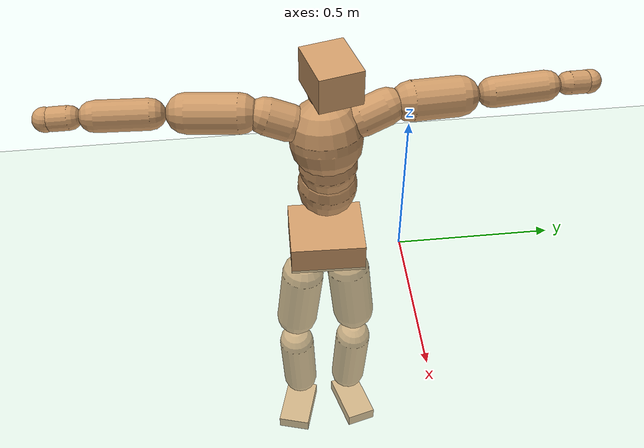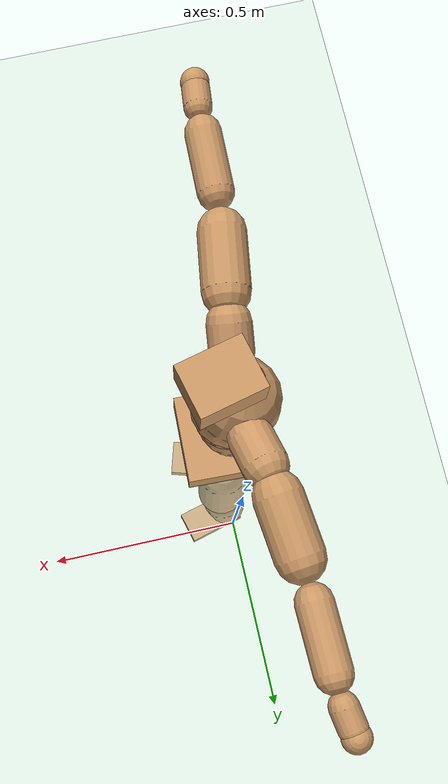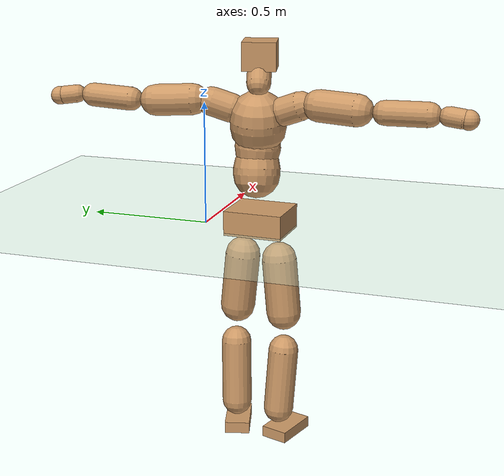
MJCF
<mujoco model="humanoid">
  <compiler coordinate="local" angle="radian"/>
  <default>
    <joint damping="0.0" armature="0.01" stiffness="0.0" limited="true"/>
    <geom conaffinity="1" condim="3" contype="7" margin="0.001" rgba="0.8 0.6 .4 1"/>
  </default>
  <asset>
    <texture type="skybox" builtin="gradient" rgb1=".4 .5 .6" rgb2="0 0 0" width="100" height="100"/>
    <texture builtin="flat" height="1278" mark="cross" markrgb="1 1 1" name="texgeom" random="0.01" rgb1="0.8 0.6 0.4" rgb2="0.8 0.6 0.4" type="cube" width="127"/>
    <texture builtin="checker" height="100" name="texplane" rgb1="0 0 0" rgb2="0.8 0.8 0.8" type="2d" width="100"/>
    <material name="MatPlane" reflectance="0.5" shininess="1" specular="1" texrepeat="60 60" texture="texplane"/>
    <material name="geom" texture="texgeom" texuniform="true"/>
  </asset>
  <worldbody>
    <light cutoff="100" diffuse="1 1 1" dir="-0 0 -1.3" directional="true" exponent="1" pos="0 0 1.3" specular=".1 .1 .1"/>
    <geom conaffinity="1" condim="3" name="floor" pos="0 0 0" rgba="0.8 0.9 0.8 1" size="100 100 .2" type="plane" material="MatPlane"/>
    <body name="Pelvis" pos="-0.0015 -0.2428 0.0464">
      <freejoint name="Pelvis"/>
      <geom type="box" contype="1" conaffinity="1" density="500" pos="-0.0117 0.0004 -0.0080" size="0.1064 0.12 0.0502" quat="0.9999 0.0000 0.0000 -0.0162" name="Pelvis"/>
      <body name="L_Hip" pos="-0.0119 0.0686 -0.0858">
        <joint name="L_Hip_x" type="hinge" pos="0 0 0" axis="1 0 0" stiffness="800" damping="80" armature="0.02" range="-180.0000 180.0000"/>
        <joint name="L_Hip_y" type="hinge" pos="0 0 0" axis="0 1 0" stiffness="800" damping="80" armature="0.02" range="-180.0000 180.0000"/>
        <joint name="L_Hip_z" type="hinge" pos="0 0 0" axis="0 0 1" stiffness="800" damping="80" armature="0.02" range="-180.0000 180.0000"/>
        <geom type="capsule" contype="1" conaffinity="1" density="500" fromto="0.0001 0.0076 -0.0755 0.0002 0.0302 -0.3018" size="0.071" name="L_Hip"/>
        <body name="L_Knee" pos="0.0003 0.0378 -0.3773">
          <joint name="L_Knee_x" type="hinge" pos="0 0 0" axis="1 0 0" stiffness="800" damping="80" armature="0.02" range="-180.0000 180.0000"/>
          <joint name="L_Knee_y" type="hinge" pos="0 0 0" axis="0 1 0" stiffness="800" damping="80" armature="0.02" range="-180.0000 180.0000"/>
          <joint name="L_Knee_z" type="hinge" pos="0 0 0" axis="0 0 1" stiffness="800" damping="80" armature="0.02" range="-180.0000 180.0000"/>
          <geom type="capsule" contype="1" conaffinity="1" density="500" fromto="-0.0088 -0.0036 -0.0869 -0.0351 -0.0144 -0.3478" size="0.062" name="L_Knee"/>
          <body name="L_Ankle" pos="-0.0438 -0.018 -0.4347">
            <joint name="L_Ankle_x" type="hinge" pos="0 0 0" axis="1 0 0" stiffness="800" damping="80" armature="0.02" range="-180.0000 180.0000"/>
            <joint name="L_Ankle_y" type="hinge" pos="0 0 0" axis="0 1 0" stiffness="800" damping="80" armature="0.02" range="-180.0000 180.0000"/>
            <joint name="L_Ankle_z" type="hinge" pos="0 0 0" axis="0 0 1" stiffness="800" damping="80" armature="0.02" range="-180.0000 180.0000"/>
            <geom type="box" contype="1" conaffinity="1" density="500" pos="0.0628 0.0168 -0.0301" size="0.094 0.0519 0.0242" quat="0.9914 0.0000 0.0000 0.1306" name="L_Ankle"/>
            <body name="L_Toe" pos="0.1255 0.0337 -0.0602">
              <joint name="L_Toe_x" type="hinge" pos="0 0 0" axis="1 0 0" stiffness="500" damping="50" armature="0.02" range="-180.0000 180.0000"/>
              <joint name="L_Toe_y" type="hinge" pos="0 0 0" axis="0 1 0" stiffness="500" damping="50" armature="0.02" range="-180.0000 180.0000"/>
              <joint name="L_Toe_z" type="hinge" pos="0 0 0" axis="0 0 1" stiffness="500" damping="50" armature="0.02" range="-180.0000 180.0000"/>
              <geom type="box" contype="1" conaffinity="1" density="500" pos="0.0000 0.0000 0.0292" size="0.0011 0.0026 0.0012" quat="0.9907 0.0000 0.0000 0.1359" name="L_Toe"/>
            </body>
          </body>
        </body>
      </body>
      <body name="R_Hip" pos="-0.0052 -0.0714 -0.0946">
        <joint name="R_Hip_x" type="hinge" pos="0 0 0" axis="1 0 0" stiffness="800" damping="80" armature="0.02" range="-180.0000 180.0000"/>
        <joint name="R_Hip_y" type="hinge" pos="0 0 0" axis="0 1 0" stiffness="800" damping="80" armature="0.02" range="-180.0000 180.0000"/>
        <joint name="R_Hip_z" type="hinge" pos="0 0 0" axis="0 0 1" stiffness="800" damping="80" armature="0.02" range="-180.0000 180.0000"/>
        <geom type="capsule" contype="1" conaffinity="1" density="500" fromto="-0.0026 -0.0078 -0.0760 -0.0103 -0.0311 -0.3041" size="0.0707" name="R_Hip"/>
        <body name="R_Knee" pos="-0.0129 -0.0389 -0.3802">
          <joint name="R_Knee_x" type="hinge" pos="0 0 0" axis="1 0 0" stiffness="800" damping="80" armature="0.02" range="-180.0000 180.0000"/>
          <joint name="R_Knee_y" type="hinge" pos="0 0 0" axis="0 1 0" stiffness="800" damping="80" armature="0.02" range="-180.0000 180.0000"/>
          <joint name="R_Knee_z" type="hinge" pos="0 0 0" axis="0 0 1" stiffness="800" damping="80" armature="0.02" range="-180.0000 180.0000"/>
          <geom type="capsule" contype="1" conaffinity="1" density="500" fromto="-0.0081 0.0040 -0.0856 -0.0326 0.0162 -0.3426" size="0.0616" name="R_Knee"/>
          <body name="R_Ankle" pos="-0.0407 0.0202 -0.4282">
            <joint name="R_Ankle_x" type="hinge" pos="0 0 0" axis="1 0 0" stiffness="800" damping="80" armature="0.02" range="-180.0000 180.0000"/>
            <joint name="R_Ankle_y" type="hinge" pos="0 0 0" axis="0 1 0" stiffness="800" damping="80" armature="0.02" range="-180.0000 180.0000"/>
            <joint name="R_Ankle_z" type="hinge" pos="0 0 0" axis="0 0 1" stiffness="800" damping="80" armature="0.02" range="-180.0000 180.0000"/>
            <geom type="box" contype="1" conaffinity="1" density="500" pos="0.0664 -0.0197 -0.0306" size="0.0923 0.0562 0.0232" quat="0.9896 0.0000 0.0000 -0.1440" name="R_Ankle"/>
            <body name="R_Toe" pos="0.1327 -0.0395 -0.0613">
              <joint name="R_Toe_x" type="hinge" pos="0 0 0" axis="1 0 0" stiffness="500" damping="50" armature="0.02" range="-180.0000 180.0000"/>
              <joint name="R_Toe_y" type="hinge" pos="0 0 0" axis="0 1 0" stiffness="500" damping="50" armature="0.02" range="-180.0000 180.0000"/>
              <joint name="R_Toe_z" type="hinge" pos="0 0 0" axis="0 0 1" stiffness="500" damping="50" armature="0.02" range="-180.0000 180.0000"/>
              <geom type="box" contype="1" conaffinity="1" density="500" pos="0.0000 0.0000 0.0315" size="0.0012 0.0027 0.0012" quat="0.9908 0.0000 0.0000 -0.1352" name="R_Toe"/>
            </body>
          </body>
        </body>
      </body>
      <body name="Torso" pos="-0.0529 0.0051 0.1324">
        <joint name="Torso_x" type="hinge" pos="0 0 0" axis="1 0 0" stiffness="1000" damping="100" armature="0.02" range="-180.0000 180.0000"/>
        <joint name="Torso_y" type="hinge" pos="0 0 0" axis="0 1 0" stiffness="1000" damping="100" armature="0.02" range="-180.0000 180.0000"/>
        <joint name="Torso_z" type="hinge" pos="0 0 0" axis="0 0 1" stiffness="1000" damping="100" armature="0.02" range="-180.0000 180.0000"/>
        <geom type="capsule" contype="1" conaffinity="1" density="500" fromto="0.0138 0.0023 0.0801 0.0092 0.0015 0.0534" size="0.0936" name="Torso"/>
        <body name="Spine" pos="0.023 0.0039 0.1336">
          <joint name="Spine_x" type="hinge" pos="0 0 0" axis="1 0 0" stiffness="1000" damping="100" armature="0.02" range="-180.0000 180.0000"/>
          <joint name="Spine_y" type="hinge" pos="0 0 0" axis="0 1 0" stiffness="1000" damping="100" armature="0.02" range="-180.0000 180.0000"/>
          <joint name="Spine_z" type="hinge" pos="0 0 0" axis="0 0 1" stiffness="1000" damping="100" armature="0.02" range="-180.0000 180.0000"/>
          <geom type="capsule" contype="1" conaffinity="1" density="500" fromto="0.0035 -0.0019 0.0326 0.0023 -0.0013 0.0218" size="0.0913" name="Spine"/>
          <body name="Chest" pos="0.0058 -0.0031 0.0544">
            <joint name="Chest_x" type="hinge" pos="0 0 0" axis="1 0 0" stiffness="1000" damping="100" armature="0.02" range="-180.0000 180.0000"/>
            <joint name="Chest_y" type="hinge" pos="0 0 0" axis="0 1 0" stiffness="1000" damping="100" armature="0.02" range="-180.0000 180.0000"/>
            <joint name="Chest_z" type="hinge" pos="0 0 0" axis="0 0 1" stiffness="1000" damping="100" armature="0.02" range="-180.0000 180.0000"/>
            <geom type="capsule" contype="1" conaffinity="1" density="500" fromto="-0.0174 -0.0045 0.0897 -0.0116 -0.0030 0.0598" size="0.1123" name="Chest"/>
            <body name="Neck" pos="-0.042 -0.0128 0.2139">
              <joint name="Neck_x" type="hinge" pos="0 0 0" axis="1 0 0" stiffness="500" damping="50" armature="0.02" range="-180.0000 180.0000"/>
              <joint name="Neck_y" type="hinge" pos="0 0 0" axis="0 1 0" stiffness="500" damping="50" armature="0.02" range="-180.0000 180.0000"/>
              <joint name="Neck_z" type="hinge" pos="0 0 0" axis="0 0 1" stiffness="500" damping="50" armature="0.02" range="-180.0000 180.0000"/>
              <geom type="capsule" contype="1" conaffinity="1" density="500" fromto="0.0100 0.0021 0.0155 0.0400 0.0086 0.0622" size="0.0477" name="Neck"/>
              <body name="Head" pos="0.0501 0.0107 0.0777">
                <joint name="Head_x" type="hinge" pos="0 0 0" axis="1 0 0" stiffness="500" damping="50" armature="0.02" range="-180.0000 180.0000"/>
                <joint name="Head_y" type="hinge" pos="0 0 0" axis="0 1 0" stiffness="500" damping="50" armature="0.02" range="-180.0000 180.0000"/>
                <joint name="Head_z" type="hinge" pos="0 0 0" axis="0 0 1" stiffness="500" damping="50" armature="0.02" range="-180.0000 180.0000"/>
                <geom type="box" contype="1" conaffinity="1" density="500" pos="0.0260 0.0064 0.0398" size="0.0832 0.0669 0.0556" quat="0.9928 0.0000 0.0000 0.1198" name="Head"/>
              </body>
            </body>
            <body name="L_Thorax" pos="-0.0198 0.0755 0.1181">
              <joint name="L_Thorax_x" type="hinge" pos="0 0 0" axis="1 0 0" stiffness="500" damping="50" armature="0.02" range="-180.0000 180.0000"/>
              <joint name="L_Thorax_y" type="hinge" pos="0 0 0" axis="0 1 0" stiffness="500" damping="50" armature="0.02" range="-180.0000 180.0000"/>
              <joint name="L_Thorax_z" type="hinge" pos="0 0 0" axis="0 0 1" stiffness="500" damping="50" armature="0.02" range="-180.0000 180.0000"/>
              <geom type="capsule" contype="1" conaffinity="1" density="500" fromto="-0.0051 0.0259 0.0084 -0.0205 0.1034 0.0338" size="0.0575" name="L_Thorax"/>
              <body name="L_Shoulder" pos="-0.0256 0.1293 0.0422">
                <joint name="L_Shoulder_x" type="hinge" pos="0 0 0" axis="1 0 0" stiffness="500" damping="50" armature="0.02" range="-720.0000 720.0000"/>
                <joint name="L_Shoulder_y" type="hinge" pos="0 0 0" axis="0 1 0" stiffness="500" damping="50" armature="0.02" range="-720.0000 720.0000"/>
                <joint name="L_Shoulder_z" type="hinge" pos="0 0 0" axis="0 0 1" stiffness="500" damping="50" armature="0.02" range="-720.0000 720.0000"/>
                <geom type="capsule" contype="1" conaffinity="1" density="500" fromto="-0.0058 0.0500 -0.0027 -0.0233 0.2000 -0.0106" size="0.0621" name="L_Shoulder"/>
                <body name="L_Elbow" pos="-0.0291 0.25 -0.0133">
                  <joint name="L_Elbow_x" type="hinge" pos="0 0 0" axis="1 0 0" stiffness="500" damping="50" armature="0.02" range="-720.0000 720.0000"/>
                  <joint name="L_Elbow_y" type="hinge" pos="0 0 0" axis="0 1 0" stiffness="500" damping="50" armature="0.02" range="-720.0000 720.0000"/>
                  <joint name="L_Elbow_z" type="hinge" pos="0 0 0" axis="0 0 1" stiffness="500" damping="50" armature="0.02" range="-720.0000 720.0000"/>
                  <geom type="capsule" contype="1" conaffinity="1" density="500" fromto="-0.0010 0.0540 0.0029 -0.0040 0.2161 0.0117" size="0.0471" name="L_Elbow"/>
                  <body name="L_Wrist" pos="-0.005 0.2702 0.0147">
                    <joint name="L_Wrist_x" type="hinge" pos="0 0 0" axis="1 0 0" stiffness="300" damping="30" armature="0.02" range="-180.0000 180.0000"/>
                    <joint name="L_Wrist_y" type="hinge" pos="0 0 0" axis="0 1 0" stiffness="300" damping="30" armature="0.02" range="-180.0000 180.0000"/>
                    <joint name="L_Wrist_z" type="hinge" pos="0 0 0" axis="0 0 1" stiffness="300" damping="30" armature="0.02" range="-180.0000 180.0000"/>
                    <geom type="capsule" contype="1" conaffinity="1" density="500" fromto="-0.0032 0.0179 -0.0022 -0.0128 0.0717 -0.0090" size="0.0358" name="L_Wrist"/>
                    <body name="L_Hand" pos="-0.016 0.0896 -0.0112">
                      <joint name="L_Hand_x" type="hinge" pos="0 0 0" axis="1 0 0" stiffness="300" damping="30" armature="0.02" range="-180.0000 180.0000"/>
                      <joint name="L_Hand_y" type="hinge" pos="0 0 0" axis="0 1 0" stiffness="300" damping="30" armature="0.02" range="-180.0000 180.0000"/>
                      <joint name="L_Hand_z" type="hinge" pos="0 0 0" axis="0 0 1" stiffness="300" damping="30" armature="0.02" range="-180.0000 180.0000"/>
                      <geom type="sphere" contype="1" conaffinity="1" density="500" size="0.0369" pos="0.0000 0.0000 0.0000" name="L_Hand"/>
                    </body>
                  </body>
                </body>
              </body>
            </body>
            <body name="R_Thorax" pos="-0.025 -0.0853 0.1165">
              <joint name="R_Thorax_x" type="hinge" pos="0 0 0" axis="1 0 0" stiffness="500" damping="50" armature="0.02" range="-180.0000 180.0000"/>
              <joint name="R_Thorax_y" type="hinge" pos="0 0 0" axis="0 1 0" stiffness="500" damping="50" armature="0.02" range="-180.0000 180.0000"/>
              <joint name="R_Thorax_z" type="hinge" pos="0 0 0" axis="0 0 1" stiffness="500" damping="50" armature="0.02" range="-180.0000 180.0000"/>
              <geom type="capsule" contype="1" conaffinity="1" density="500" fromto="-0.0027 -0.0237 0.0089 -0.0106 -0.0947 0.0355" size="0.0571" name="R_Thorax"/>
              <body name="R_Shoulder" pos="-0.0133 -0.1184 0.0444">
                <joint name="R_Shoulder_x" type="hinge" pos="0 0 0" axis="1 0 0" stiffness="500" damping="50" armature="0.02" range="-720.0000 720.0000"/>
                <joint name="R_Shoulder_y" type="hinge" pos="0 0 0" axis="0 1 0" stiffness="500" damping="50" armature="0.02" range="-720.0000 720.0000"/>
                <joint name="R_Shoulder_z" type="hinge" pos="0 0 0" axis="0 0 1" stiffness="500" damping="50" armature="0.02" range="-720.0000 720.0000"/>
                <geom type="capsule" contype="1" conaffinity="1" density="500" fromto="-0.0081 -0.0517 -0.0017 -0.0323 -0.2069 -0.0067" size="0.0621" name="R_Shoulder"/>
                <body name="R_Elbow" pos="-0.0403 -0.2586 -0.0084">
                  <joint name="R_Elbow_x" type="hinge" pos="0 0 0" axis="1 0 0" stiffness="500" damping="50" armature="0.02" range="-720.0000 720.0000"/>
                  <joint name="R_Elbow_y" type="hinge" pos="0 0 0" axis="0 1 0" stiffness="500" damping="50" armature="0.02" range="-720.0000 720.0000"/>
                  <joint name="R_Elbow_z" type="hinge" pos="0 0 0" axis="0 0 1" stiffness="500" damping="50" armature="0.02" range="-720.0000 720.0000"/>
                  <geom type="capsule" contype="1" conaffinity="1" density="500" fromto="-0.0013 -0.0540 0.0009 -0.0053 -0.2161 0.0036" size="0.0476" name="R_Elbow"/>
                  <body name="R_Wrist" pos="-0.0066 -0.2702 0.0045">
                    <joint name="R_Wrist_x" type="hinge" pos="0 0 0" axis="1 0 0" stiffness="300" damping="30" armature="0.02" range="-180.0000 180.0000"/>
                    <joint name="R_Wrist_y" type="hinge" pos="0 0 0" axis="0 1 0" stiffness="300" damping="30" armature="0.02" range="-180.0000 180.0000"/>
                    <joint name="R_Wrist_z" type="hinge" pos="0 0 0" axis="0 0 1" stiffness="300" damping="30" armature="0.02" range="-180.0000 180.0000"/>
                    <geom type="capsule" contype="1" conaffinity="1" density="500" fromto="-0.0020 -0.0184 -0.0019 -0.0082 -0.0737 -0.0075" size="0.0368" name="R_Wrist"/>
                    <body name="R_Hand" pos="-0.0102 -0.0921 -0.0094">
                      <joint name="R_Hand_x" type="hinge" pos="0 0 0" axis="1 0 0" stiffness="300" damping="30" armature="0.02" range="-180.0000 180.0000"/>
                      <joint name="R_Hand_y" type="hinge" pos="0 0 0" axis="0 1 0" stiffness="300" damping="30" armature="0.02" range="-180.0000 180.0000"/>
                      <joint name="R_Hand_z" type="hinge" pos="0 0 0" axis="0 0 1" stiffness="300" damping="30" armature="0.02" range="-180.0000 180.0000"/>
                      <geom type="sphere" contype="1" conaffinity="1" density="500" size="0.0376" pos="0.0000 0.0000 0.0000" name="R_Hand"/>
                    </body>
                  </body>
                </body>
              </body>
            </body>
          </body>
        </body>
      </body>
    </body>
  </worldbody>
  <actuator>
    <motor name="L_Hip_x" joint="L_Hip_x" gear="500"/>
    <motor name="L_Hip_y" joint="L_Hip_y" gear="500"/>
    <motor name="L_Hip_z" joint="L_Hip_z" gear="500"/>
    <motor name="L_Knee_x" joint="L_Knee_x" gear="500"/>
    <motor name="L_Knee_y" joint="L_Knee_y" gear="500"/>
    <motor name="L_Knee_z" joint="L_Knee_z" gear="500"/>
    <motor name="L_Ankle_x" joint="L_Ankle_x" gear="500"/>
    <motor name="L_Ankle_y" joint="L_Ankle_y" gear="500"/>
    <motor name="L_Ankle_z" joint="L_Ankle_z" gear="500"/>
    <motor name="L_Toe_x" joint="L_Toe_x" gear="500"/>
    <motor name="L_Toe_y" joint="L_Toe_y" gear="500"/>
    <motor name="L_Toe_z" joint="L_Toe_z" gear="500"/>
    <motor name="R_Hip_x" joint="R_Hip_x" gear="500"/>
    <motor name="R_Hip_y" joint="R_Hip_y" gear="500"/>
    <motor name="R_Hip_z" joint="R_Hip_z" gear="500"/>
    <motor name="R_Knee_x" joint="R_Knee_x" gear="500"/>
    <motor name="R_Knee_y" joint="R_Knee_y" gear="500"/>
    <motor name="R_Knee_z" joint="R_Knee_z" gear="500"/>
    <motor name="R_Ankle_x" joint="R_Ankle_x" gear="500"/>
    <motor name="R_Ankle_y" joint="R_Ankle_y" gear="500"/>
    <motor name="R_Ankle_z" joint="R_Ankle_z" gear="500"/>
    <motor name="R_Toe_x" joint="R_Toe_x" gear="500"/>
    <motor name="R_Toe_y" joint="R_Toe_y" gear="500"/>
    <motor name="R_Toe_z" joint="R_Toe_z" gear="500"/>
    <motor name="Torso_x" joint="Torso_x" gear="500"/>
    <motor name="Torso_y" joint="Torso_y" gear="500"/>
    <motor name="Torso_z" joint="Torso_z" gear="500"/>
    <motor name="Spine_x" joint="Spine_x" gear="500"/>
    <motor name="Spine_y" joint="Spine_y" gear="500"/>
    <motor name="Spine_z" joint="Spine_z" gear="500"/>
    <motor name="Chest_x" joint="Chest_x" gear="500"/>
    <motor name="Chest_y" joint="Chest_y" gear="500"/>
    <motor name="Chest_z" joint="Chest_z" gear="500"/>
    <motor name="Neck_x" joint="Neck_x" gear="500"/>
    <motor name="Neck_y" joint="Neck_y" gear="500"/>
    <motor name="Neck_z" joint="Neck_z" gear="500"/>
    <motor name="Head_x" joint="Head_x" gear="500"/>
    <motor name="Head_y" joint="Head_y" gear="500"/>
    <motor name="Head_z" joint="Head_z" gear="500"/>
    <motor name="L_Thorax_x" joint="L_Thorax_x" gear="500"/>
    <motor name="L_Thorax_y" joint="L_Thorax_y" gear="500"/>
    <motor name="L_Thorax_z" joint="L_Thorax_z" gear="500"/>
    <motor name="L_Shoulder_x" joint="L_Shoulder_x" gear="500"/>
    <motor name="L_Shoulder_y" joint="L_Shoulder_y" gear="500"/>
    <motor name="L_Shoulder_z" joint="L_Shoulder_z" gear="500"/>
    <motor name="L_Elbow_x" joint="L_Elbow_x" gear="500"/>
    <motor name="L_Elbow_y" joint="L_Elbow_y" gear="500"/>
    <motor name="L_Elbow_z" joint="L_Elbow_z" gear="500"/>
    <motor name="L_Wrist_x" joint="L_Wrist_x" gear="500"/>
    <motor name="L_Wrist_y" joint="L_Wrist_y" gear="500"/>
    <motor name="L_Wrist_z" joint="L_Wrist_z" gear="500"/>
    <motor name="L_Hand_x" joint="L_Hand_x" gear="500"/>
    <motor name="L_Hand_y" joint="L_Hand_y" gear="500"/>
    <motor name="L_Hand_z" joint="L_Hand_z" gear="500"/>
    <motor name="R_Thorax_x" joint="R_Thorax_x" gear="500"/>
    <motor name="R_Thorax_y" joint="R_Thorax_y" gear="500"/>
    <motor name="R_Thorax_z" joint="R_Thorax_z" gear="500"/>
    <motor name="R_Shoulder_x" joint="R_Shoulder_x" gear="500"/>
    <motor name="R_Shoulder_y" joint="R_Shoulder_y" gear="500"/>
    <motor name="R_Shoulder_z" joint="R_Shoulder_z" gear="500"/>
    <motor name="R_Elbow_x" joint="R_Elbow_x" gear="500"/>
    <motor name="R_Elbow_y" joint="R_Elbow_y" gear="500"/>
    <motor name="R_Elbow_z" joint="R_Elbow_z" gear="500"/>
    <motor name="R_Wrist_x" joint="R_Wrist_x" gear="500"/>
    <motor name="R_Wrist_y" joint="R_Wrist_y" gear="500"/>
    <motor name="R_Wrist_z" joint="R_Wrist_z" gear="500"/>
    <motor name="R_Hand_x" joint="R_Hand_x" gear="500"/>
    <motor name="R_Hand_y" joint="R_Hand_y" gear="500"/>
    <motor name="R_Hand_z" joint="R_Hand_z" gear="500"/>
  </actuator>
  <contact>
    <exclude body1="Torso" body2="Chest"/>
    <exclude body1="Head" body2="Chest"/>
    <exclude body1="R_Knee" body2="R_Toe"/>
    <exclude body1="R_Knee" body2="L_Ankle"/>
    <exclude body1="R_Knee" body2="L_Toe"/>
    <exclude body1="L_Knee" body2="L_Toe"/>
    <exclude body1="L_Knee" body2="R_Ankle"/>
    <exclude body1="L_Knee" body2="R_Toe"/>
    <exclude body1="L_Shoulder" body2="Chest"/>
    <exclude body1="R_Shoulder" body2="Chest"/>
  </contact>
  <sensor/>
  <size njmax="700" nconmax="700"/>
</mujoco>
